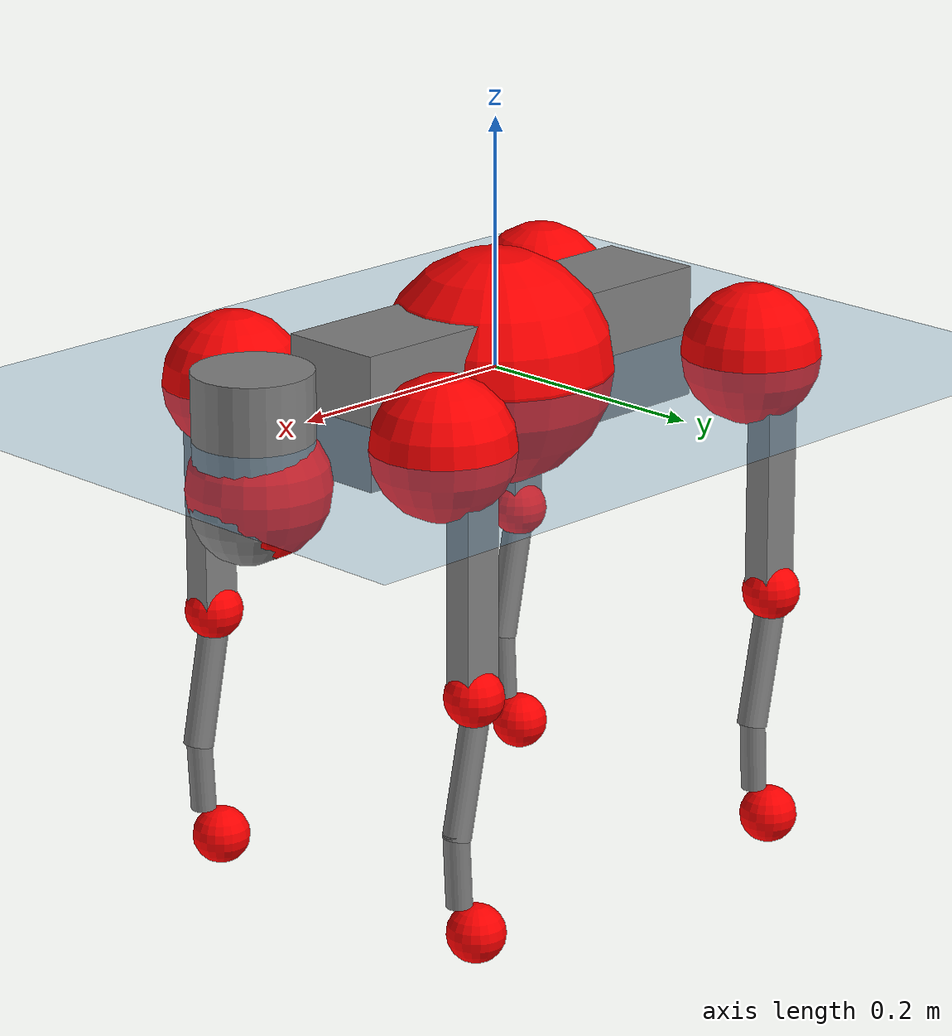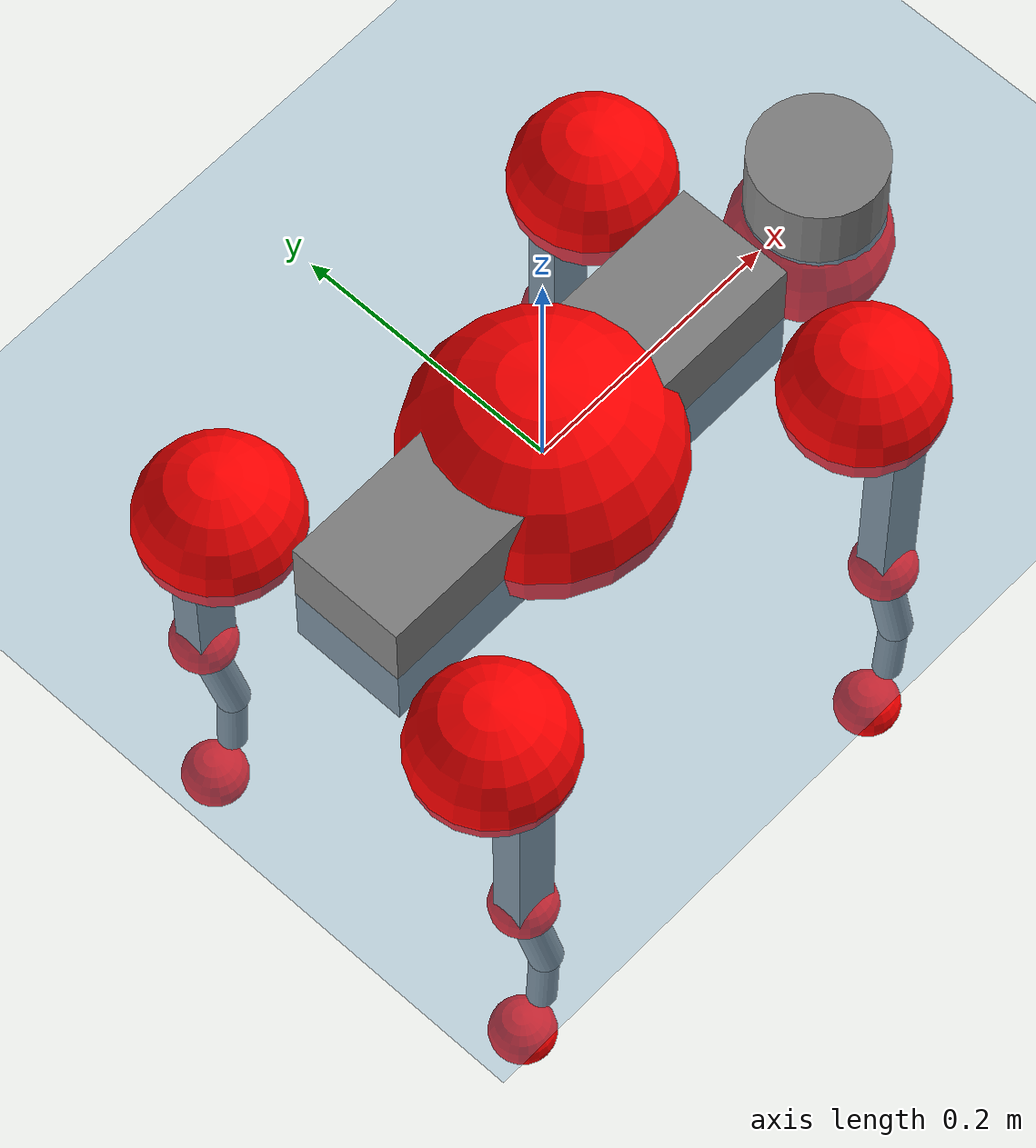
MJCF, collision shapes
<mujoco model="go2">
  <compiler angle="radian" assetdir="assets" balanceinertia="true" inertiafromgeom="false"/>

  <option timestep="0.005" density="1.2" viscosity="2e-05"/>

  <size nkey="1"/>

  <visual>
    <quality shadowsize="8192"/>
    <map shadowclip="0.5"/>
  </visual>

  <default>
    <default class="/">
      <geom contype="0" conaffinity="0" group="1" solref="-1000 -80"/>
      <site size="0.01 0.005 0.005" group="5"/>
      <general forcelimited="true" biastype="affine" gainprm="20" biasprm="0 -20 -0.5"/>
      <default class="go2">
        <joint armature="0.01" damping="0.01" frictionloss="0.2"/>
        <geom condim="1" margin="0.001"/>
        <default class="visual">
          <geom type="mesh" group="2"/>
        </default>
        <default class="collision">
          <geom group="3"/>
          <default class="foot">
            <geom size="0.022 0 0" condim="6" priority="1" friction="0.8 0.02 0.01" solimp="0.015 1 0.022"/>
          </default>
        </default>
        <default class="reward_collision_sphere">
          <geom group="5" rgba="1 0 0 1"/>
        </default>
      </default>
    </default>
  </default>

  <asset>
    <texture type="skybox" colorspace="auto" name="//unnamed_texture_0" builtin="gradient" rgb1="0.95 0.95 0.95" rgb2="0.95 0.95 0.95" width="100" height="600"/>
    <texture type="2d" colorspace="auto" name="texplane" builtin="checker" rgb1="0.345 0.575 0.748" rgb2="0.345 0.575 0.748" markrgb="1 1 1" width="512" height="512"/>
    <material name="MatPlane" class="/" texture="texplane" texuniform="true" texrepeat="2 2" specular="0.9"/>
    <material name="metal" class="/" rgba="0.9 0.95 0.95 1"/>
    <material name="black" class="/" rgba="0 0 0 1"/>
    <material name="white" class="/"/>
    <material name="gray" class="/" rgba="0.671705 0.692426 0.77427 1"/>
    <mesh name="base_0" class="/" file="base_0.obj"/>
    <mesh name="base_1" class="/" file="base_1.obj"/>
    <mesh name="base_2" class="/" file="base_2.obj"/>
    <mesh name="base_3" class="/" file="base_3.obj"/>
    <mesh name="base_4" class="/" file="base_4.obj"/>
    <mesh name="hip_0" class="/" file="hip_0.obj"/>
    <mesh name="hip_1" class="/" file="hip_1.obj"/>
    <mesh name="thigh_0" class="/" file="thigh_0.obj"/>
    <mesh name="thigh_1" class="/" file="thigh_1.obj"/>
    <mesh name="thigh_mirror_0" class="/" file="thigh_mirror_0.obj"/>
    <mesh name="thigh_mirror_1" class="/" file="thigh_mirror_1.obj"/>
    <mesh name="calf_0" class="/" file="calf_0.obj"/>
    <mesh name="calf_1" class="/" file="calf_1.obj"/>
    <mesh name="calf_mirror_0" class="/" file="calf_mirror_0.obj"/>
    <mesh name="calf_mirror_1" class="/" file="calf_mirror_1.obj"/>
    <mesh name="foot" class="/" file="foot.obj"/>
  </asset>

  <worldbody>
    <geom name="floor" class="/" size="100 100 0.125" type="plane" group="0" material="MatPlane"/>
    <light name="toplight_shadow" class="/" pos="0 0 5" dir="0.0990148 0.0990148 -0.990148" type="directional" ambient="0.04 0.04 0.04" diffuse="0.55 0.55 0.55" specular="0.12 0.12 0.12"/>
    <light name="toplight_fill" class="/" pos="0 0 5" dir="0.0990148 0.0990148 -0.990148" type="directional" castshadow="false" ambient="0.04 0.04 0.04" diffuse="0.3 0.3 0.3" specular="0.08 0.08 0.08"/>
    <body name="trunk" childclass="go2" pos="-0.000299403 -0.000103245 0.00126836" quat="0.999999 0.000802137 -0.000316295 -0.000541714">
      <inertial pos="0.0175166 -0.00270495 -0.00676423" quat="-0.000641369 0.71305 -0.00200623 0.70111" mass="5.75281" diaginertia="0.0601844 0.100527 0.0148918"/>
      <joint name="//unnamed_joint_0" type="free" armature="0" damping="0" frictionloss="0"/>
      <geom name="//unnamed_geom_1" class="visual" material="black" mesh="base_0"/>
      <geom name="//unnamed_geom_2" class="visual" material="black" mesh="base_1"/>
      <geom name="//unnamed_geom_3" class="visual" material="black" mesh="base_2"/>
      <geom name="//unnamed_geom_4" class="visual" material="white" mesh="base_3"/>
      <geom name="//unnamed_geom_5" class="visual" material="gray" mesh="base_4"/>
      <geom name="trunk_1" class="collision" size="0.176134 0.0437759 0.0533738" type="box"/>
      <geom name="trunk_2" class="collision" size="0.0468191 0.0421372" pos="0.25442 0 0.00908585" type="cylinder"/>
      <geom name="trunk_3" class="collision" size="0.04401" pos="0.261562 0 -0.0545151"/>
      <geom name="//unnamed_geom_9" class="reward_collision_sphere" size="0.0936383"/>
      <geom name="//unnamed_geom_10" class="reward_collision_sphere" size="0.056183" pos="0.249956 0 -0.0408863"/>
      <site name="imu" pos="-0.0123793 -0.00107915 0.0278926" size="0.00936383"/>
      <camera name="track" pos="0 -2.01572 0" quat="0.707107 0.707107 0 0" mode="trackcom"/>
      <camera name="ego_camera" pos="0.278523 0 0.0408863" quat="-0.5 -0.5 0.5 0.5"/>
      <body name="FL_hip" pos="0.169228 0.0440498 -0.00276839" quat="1 0.000250776 0.000306864 0.000103701">
        <inertial pos="-0.00466846 -0.000631772 0.000576429" quat="0.49679 0.50018 0.505683 0.497296" mass="0.565045" diaginertia="0.000496601 0.000590182 0.000291839"/>
        <joint name="FL_hip_joint" pos="0 0 0" axis="0.999894 -0.0140658 -0.00384572" range="-1.0502 1.08443" armature="0.00920733" damping="0.0196034" frictionloss="0.16102"/>
        <geom name="//unnamed_geom_11" class="visual" material="metal" mesh="hip_0"/>
        <geom name="//unnamed_geom_12" class="visual" material="gray" mesh="hip_1"/>
        <geom name="//unnamed_geom_13" class="collision" size="0.0430736 0.0187277" pos="0 0.0806289 0" quat="0.707107 0.707107 0 0" type="cylinder"/>
        <geom name="//unnamed_geom_14" class="reward_collision_sphere" size="0.056183" pos="0 0.0705503 0"/>
        <body name="FL_thigh" pos="-0.00333422 0.097533 0.0027951" quat="0.999999 -0.000400669 -0.00041799 -0.000933591">
          <inertial pos="-0.00410793 -0.0225571 -0.0271448" quat="0.825276 0.0743308 -0.0181241 0.559522" mass="0.923922" diaginertia="0.00342796 0.00603588 0.000556582"/>
          <joint name="FL_thigh_joint" pos="0 0 0" axis="0.00472145 0.999984 0.00322488" stiffness="0.00885937" range="-1.52057 3.54715" armature="0.00922298" damping="0.017931" frictionloss="0.162891"/>
          <geom name="//unnamed_geom_15" class="visual" material="metal" mesh="thigh_0"/>
          <geom name="//unnamed_geom_16" class="visual" material="gray" mesh="thigh_1"/>
          <geom name="//unnamed_geom_17" class="collision" size="0.0997248 0.0114707 0.0159185" pos="0 0 -0.0967644" quat="0.707107 0 0.707107 0" type="box"/>
          <body name="FL_calf" pos="0.000246634 0.00175763 -0.193641" quat="1 1.0262e-05 5.42378e-06 0.000122714">
            <inertial pos="0.00516839 -0.000719601 -0.130463" quat="0.70984 0.00231366 -0.00478489 0.704343" mass="0.200931" diaginertia="0.000823334 0.00151385 3.30479e-05"/>
            <joint name="FL_calf_joint" pos="0 0 0" axis="-0.011737 0.999853 0.0124817" range="-2.66727 -0.829358" armature="0.00985724" damping="0.00129899" frictionloss="0.191484"/>
            <geom name="//unnamed_geom_18" class="visual" material="gray" mesh="calf_0"/>
            <geom name="//unnamed_geom_19" class="visual" material="black" mesh="calf_1"/>
            <geom name="FL_calf0" class="collision" size="0.0112366 0.056183" pos="0.00714161 0 -0.0545151" quat="0.994493 0 -0.104807 0" type="cylinder"/>
            <geom name="//unnamed_geom_21" class="collision" size="0.0103002 0.0304324" pos="0.017854 0 -0.134471" quat="0.999688 0 0.0249974 0" type="cylinder"/>
            <geom name="//unnamed_geom_22" class="visual" pos="0 0 -0.193529" quat="1 0 0 0" material="black" mesh="foot"/>
            <geom name="FL_foot" class="foot" size="0.0156979" pos="-0.0017854 0 -0.193529"/>
            <geom name="//unnamed_geom_24" class="reward_collision_sphere" size="0.0234096"/>
            <geom name="//unnamed_geom_25" class="reward_collision_sphere" size="0.0234096" pos="-0.0017854 0 -0.193529"/>
            <site name="FL_foot" class="foot" pos="-0.0017854 0 -0.193529" size="0.00936383"/>
          </body>
        </body>
      </body>
      <body name="FR_hip" pos="0.170897 -0.0451875 -0.000992652" quat="1 -0.000115121 1.80782e-05 -6.8548e-05">
        <inertial pos="-0.00737143 -0.00280133 -0.00323299" quat="0.503472 0.507283 0.493935 0.495185" mass="0.55814" diaginertia="0.000479582 0.000630684 0.000284127"/>
        <joint name="FR_hip_joint" pos="0 0 0" axis="0.999908 0.0135732 -2.97055e-05" stiffness="0.00507371" range="-1.06331 1.03614" armature="0.00966632" damping="0" frictionloss="0.201056"/>
        <geom name="//unnamed_geom_26" class="visual" pos="0 8.64846e-10 3.7095e-08" quat="4.63268e-05 1 0 0" material="metal" mesh="hip_0"/>
        <geom name="//unnamed_geom_27" class="visual" pos="0 1.40202e-09 -9.17502e-08" quat="4.63268e-05 1 0 0" material="gray" mesh="hip_1"/>
        <geom name="//unnamed_geom_28" class="collision" size="0.0430736 0.0187277" pos="0 -0.0806289 0" quat="0.707107 0.707107 0 0" type="cylinder"/>
        <geom name="//unnamed_geom_29" class="reward_collision_sphere" size="0.056183" pos="0 -0.0705503 0"/>
        <body name="FR_thigh" pos="0.00278098 -0.0989106 -0.00181449" quat="0.999999 0.000594958 0.000526272 -0.000888754">
          <inertial pos="-0.00149275 0.0217086 -0.0322743" quat="0.554256 -0.0276839 0.0949536 0.826449" mass="0.9846" diaginertia="0.00327665 0.0059105 0.000561634"/>
          <joint name="FR_thigh_joint" pos="0 0 0" axis="-0.00041111 -1 -0.000232434" range="-3.46675 1.57489" armature="0.00817868" damping="0.0185432" frictionloss="0.204884"/>
          <geom name="//unnamed_geom_30" class="visual" material="metal" mesh="thigh_mirror_0"/>
          <geom name="//unnamed_geom_31" class="visual" material="gray" mesh="thigh_mirror_1"/>
          <geom name="//unnamed_geom_32" class="collision" size="0.0997248 0.0114707 0.0159185" pos="0 0 -0.0967644" quat="0.707107 0 0.707107 0" type="box"/>
          <body name="FR_calf" pos="-0.00268648 -0.00136645 -0.194472" quat="0.999999 -0.000363207 0.00122242 0.00042712">
            <inertial pos="0.00275303 0.000770085 -0.129071" quat="0.708148 -0.00961016 0.00150669 0.705997" mass="0.211827" diaginertia="0.000893648 0.00153346 3.42049e-05"/>
            <joint name="FR_calf_joint" pos="0 0 0" axis="0.00943846 -0.999955 -0.000549857" range="0.7979 2.667" armature="0.0107825" damping="0.0173747" frictionloss="0.206649"/>
            <geom name="//unnamed_geom_33" class="visual" material="gray" mesh="calf_mirror_0"/>
            <geom name="//unnamed_geom_34" class="visual" material="black" mesh="calf_mirror_1"/>
            <geom name="FR_calf0" class="collision" size="0.012173 0.056183" pos="0.00892702 0 -0.0545151" quat="0.995004 0 -0.0998334 0" type="cylinder"/>
            <geom name="//unnamed_geom_36" class="collision" size="0.0103002 0.0304324" pos="0.017854 0 -0.134471" quat="0.999688 0 0.0249974 0" type="cylinder"/>
            <geom name="//unnamed_geom_37" class="visual" pos="0 0 -0.193529" quat="1 0 0 0" material="black" mesh="foot"/>
            <geom name="FR_foot" class="foot" size="0.0200347" pos="-0.0017854 0 -0.193529"/>
            <geom name="//unnamed_geom_39" class="reward_collision_sphere" size="0.0234096"/>
            <geom name="//unnamed_geom_40" class="reward_collision_sphere" size="0.0234096" pos="-0.0017854 0 -0.193529"/>
            <site name="FR_foot" class="foot" pos="-0.0017854 0 -0.193529" size="0.00936383"/>
          </body>
        </body>
      </body>
      <body name="RL_hip" pos="-0.170135 0.0444962 -0.00238046" quat="1 -0.000145745 4.79006e-05 0.000202073">
        <inertial pos="0.00502106 0.00513904 -0.000461957" quat="0.501003 0.509375 0.490402 0.499038" mass="0.568677" diaginertia="0.000519656 0.000635898 0.000294851"/>
        <joint name="RL_hip_joint" pos="0 0 0" axis="-0.999996 0.00266448 0.000138821" range="-1.0584 1.06685" armature="0.00998986" damping="0.000878587" frictionloss="0.185221"/>
        <geom name="//unnamed_geom_41" class="visual" pos="1.38374e-10 0 2.71244e-08" quat="4.63268e-05 0 1 0" material="metal" mesh="hip_0"/>
        <geom name="//unnamed_geom_42" class="visual" pos="2.2432e-10 0 2.40555e-08" quat="4.63268e-05 0 1 0" material="gray" mesh="hip_1"/>
        <geom name="//unnamed_geom_43" class="collision" size="0.0430736 0.0187277" pos="0 0.0806289 0" quat="0.707107 0.707107 0 0" type="cylinder"/>
        <geom name="//unnamed_geom_44" class="reward_collision_sphere" size="0.056183" pos="0 0.0705503 0"/>
        <body name="RL_thigh" pos="0.000366866 0.09445 0.00160493" quat="1 0.000650706 -0.00034632 -0.000247056">
          <inertial pos="-0.00443504 -0.020869 -0.0315676" quat="0.828973 0.0859774 -0.0222252 0.552193" mass="0.892188" diaginertia="0.00319449 0.0060669 0.000534496"/>
          <joint name="RL_thigh_joint" pos="0 0 0" axis="-0.00242539 0.999995 -0.00205901" stiffness="0.00984038" range="-0.568509 4.48196" armature="0.00918926" damping="0" frictionloss="0.190349"/>
          <geom name="//unnamed_geom_45" class="visual" material="metal" mesh="thigh_0"/>
          <geom name="//unnamed_geom_46" class="visual" material="gray" mesh="thigh_1"/>
          <geom name="//unnamed_geom_47" class="collision" size="0.0997248 0.0114707 0.0159185" pos="0 0 -0.0967644" quat="0.707107 0 0.707107 0" type="box"/>
          <body name="RL_calf" pos="-0.00175552 0.00111534 -0.195091" quat="1 -7.37348e-05 6.89984e-05 -8.58882e-06">
            <inertial pos="0.00787718 0.00181262 -0.129617" quat="0.708389 0.0132045 0.00214155 0.705696" mass="0.201561" diaginertia="0.000825934 0.0015908 3.37008e-05"/>
            <joint name="RL_calf_joint" pos="0 0 0" axis="0.000498194 0.999997 -0.00218815" stiffness="0.00988643" range="-2.6721 -0.892449" armature="0.0103662" damping="0.0167506" frictionloss="0.162507"/>
            <geom name="//unnamed_geom_48" class="visual" material="gray" mesh="calf_0"/>
            <geom name="//unnamed_geom_49" class="visual" material="black" mesh="calf_1"/>
            <geom name="RL_calf0" class="collision" size="0.012173 0.056183" pos="0.00892702 0 -0.0545151" quat="0.995004 0 -0.0998334 0" type="cylinder"/>
            <geom name="//unnamed_geom_51" class="collision" size="0.0103002 0.0304324" pos="0.017854 0 -0.134471" quat="0.999688 0 0.0249974 0" type="cylinder"/>
            <geom name="//unnamed_geom_52" class="visual" pos="0 0 -0.193529" quat="1 0 0 0" material="black" mesh="foot"/>
            <geom name="RL_foot" class="foot" size="0.018867" pos="-0.0017854 0 -0.193529"/>
            <geom name="//unnamed_geom_54" class="reward_collision_sphere" size="0.0234096"/>
            <geom name="//unnamed_geom_55" class="reward_collision_sphere" size="0.0234096" pos="-0.0017854 0 -0.193529"/>
            <site name="RL_foot" class="foot" pos="-0.0017854 0 -0.193529" size="0.00936383"/>
          </body>
        </body>
      </body>
      <body name="RR_hip" pos="-0.171474 -0.0481997 0.00259881" quat="1 -0.000149511 -0.000329156 2.36052e-05">
        <inertial pos="0.00212947 0.000653417 -0.00207039" quat="0.499439 0.498441 0.500609 0.501506" mass="0.565488" diaginertia="0.000491389 0.00061273 0.000293386"/>
        <joint name="RR_hip_joint" pos="0 0 0" axis="-0.99994 0.00166158 -0.01086" range="-1.09416 1.09506" armature="0.00854141" damping="0" frictionloss="0.188689"/>
        <geom name="//unnamed_geom_56" class="visual" pos="-1.34387e-10 8.64846e-10 -9.9706e-09" quat="2.14617e-09 4.63268e-05 4.63268e-05 -1" material="metal" mesh="hip_0"/>
        <geom name="//unnamed_geom_57" class="visual" pos="-2.34182e-10 1.40202e-09 1.15806e-07" quat="2.14617e-09 4.63268e-05 4.63268e-05 -1" material="gray" mesh="hip_1"/>
        <geom name="//unnamed_geom_58" class="collision" size="0.0430736 0.0187277" pos="0 -0.0806289 0" quat="0.707107 0.707107 0 0" type="cylinder"/>
        <geom name="//unnamed_geom_59" class="reward_collision_sphere" size="0.056183" pos="0 -0.0705503 0"/>
        <body name="RR_thigh" pos="0.00173298 -0.0947814 -0.00117037" quat="0.999999 -0.000447416 0.00102018 0.000160505">
          <inertial pos="-0.00292787 0.0251869 -0.0296117" quat="0.55193 -0.0193865 0.0851106 0.829309" mass="0.881041" diaginertia="0.00314238 0.00593823 0.000531873"/>
          <joint name="RR_thigh_joint" pos="0 0 0" axis="-0.00174638 -0.99999 -0.00408021" stiffness="0.000135347" range="-4.48407 0.508318" armature="0.00965253" damping="0.0224928" frictionloss="0.183573"/>
          <geom name="//unnamed_geom_60" class="visual" material="metal" mesh="thigh_mirror_0"/>
          <geom name="//unnamed_geom_61" class="visual" material="gray" mesh="thigh_mirror_1"/>
          <geom name="//unnamed_geom_62" class="collision" size="0.0997248 0.0114707 0.0159185" pos="0 0 -0.0967644" quat="0.707107 0 0.707107 0" type="box"/>
          <body name="RR_calf" pos="0.00160584 0.00181762 -0.194067" quat="1 -0.00084045 -0.000372451 0.000336538">
            <inertial pos="0.00815116 -0.00134741 -0.128278" quat="0.695603 0.00256051 0.00636699 0.718394" mass="0.199323" diaginertia="0.000819489 0.00152197 3.19074e-05"/>
            <joint name="RR_calf_joint" pos="0 0 0" axis="-0.011399 -0.999932 0.00230928" range="0.837537 2.77003" armature="0.00913864" damping="0.017591" frictionloss="0.205915"/>
            <geom name="//unnamed_geom_63" class="visual" material="gray" mesh="calf_mirror_0"/>
            <geom name="//unnamed_geom_64" class="visual" material="black" mesh="calf_mirror_1"/>
            <geom name="RR_calf0" class="collision" size="0.012173 0.056183" pos="0.00892702 0 -0.0545151" quat="0.995004 0 -0.0998334 0" type="cylinder"/>
            <geom name="//unnamed_geom_66" class="collision" size="0.0103002 0.0304324" pos="0.017854 0 -0.134471" quat="0.999688 0 0.0249974 0" type="cylinder"/>
            <geom name="//unnamed_geom_67" class="visual" pos="0 0 -0.193529" quat="1 0 0 0" material="black" mesh="foot"/>
            <geom name="RR_foot" class="foot" size="0.0188773" pos="-0.0017854 0 -0.193529"/>
            <geom name="//unnamed_geom_69" class="reward_collision_sphere" size="0.0234096"/>
            <geom name="//unnamed_geom_70" class="reward_collision_sphere" size="0.0234096" pos="-0.0017854 0 -0.193529"/>
            <site name="RR_foot" class="foot" pos="-0.0017854 0 -0.193529" size="0.00936383"/>
          </body>
        </body>
      </body>
    </body>
  </worldbody>

  <contact>
    <pair class="/" geom1="floor" geom2="FL_foot" name="//unnamed_contact_0"/>
    <pair class="/" geom1="floor" geom2="FR_foot" name="//unnamed_contact_1"/>
    <pair class="/" geom1="floor" geom2="RL_foot" name="//unnamed_contact_2"/>
    <pair class="/" geom1="floor" geom2="RR_foot" name="//unnamed_contact_3"/>
  </contact>

  <actuator>
    <general name="FL_hip" class="/" joint="FL_hip_joint" forcerange="-19.8321 19.8321" gainprm="17.6209" biasprm="0 -17.6209 -0.438393"/>
    <general name="FL_thigh" class="/" joint="FL_thigh_joint" forcerange="-20.6499 20.6499" gainprm="17.6209" biasprm="0 -17.6209 -0.438393"/>
    <general name="FL_calf" class="/" joint="FL_calf_joint" forcerange="-40.3377 40.3377" gainprm="17.6209" biasprm="0 -17.6209 -0.438393"/>
    <general name="FR_hip" class="/" joint="FR_hip_joint" forcerange="-22.179 22.179" gainprm="17.6209" biasprm="0 -17.6209 -0.438393"/>
    <general name="FR_thigh" class="/" joint="FR_thigh_joint" forcerange="-24.5215 24.5215" gainprm="17.6209" biasprm="0 -17.6209 -0.438393"/>
    <general name="FR_calf" class="/" joint="FR_calf_joint" forcerange="-43.0225 43.0225" gainprm="17.6209" biasprm="0 -17.6209 -0.438393"/>
    <general name="RL_hip" class="/" joint="RL_hip_joint" forcerange="-21.831 21.831" gainprm="17.6209" biasprm="0 -17.6209 -0.438393"/>
    <general name="RL_thigh" class="/" joint="RL_thigh_joint" forcerange="-19.8784 19.8784" gainprm="17.6209" biasprm="0 -17.6209 -0.438393"/>
    <general name="RL_calf" class="/" joint="RL_calf_joint" forcerange="-44.8659 44.8659" gainprm="17.6209" biasprm="0 -17.6209 -0.438393"/>
    <general name="RR_hip" class="/" joint="RR_hip_joint" forcerange="-22.9761 22.9761" gainprm="17.6209" biasprm="0 -17.6209 -0.438393"/>
    <general name="RR_thigh" class="/" joint="RR_thigh_joint" forcerange="-24.2893 24.2893" gainprm="17.6209" biasprm="0 -17.6209 -0.438393"/>
    <general name="RR_calf" class="/" joint="RR_calf_joint" forcerange="-43.0245 43.0245" gainprm="17.6209" biasprm="0 -17.6209 -0.438393"/>
  </actuator>

  <sensor>
    <gyro site="imu" name="imu_angular_velocity"/>
    <velocimeter site="imu" name="imu_linear_velocity"/>
    <framelinvel objtype="site" objname="FL_foot" name="FL_foot_global_linear_velocity"/>
    <framelinvel objtype="site" objname="FR_foot" name="FR_foot_global_linear_velocity"/>
    <framelinvel objtype="site" objname="RL_foot" name="RL_foot_global_linear_velocity"/>
    <framelinvel objtype="site" objname="RR_foot" name="RR_foot_global_linear_velocity"/>
  </sensor>

  <keyframe>
    <key name="home" qpos="0 0 0.325 1 0 0 0 0.1 0.8 -1.5 -0.1 -0.8 1.5 -0.1 0.8 -1.5 0.1 -0.8 1.5"/>
  </keyframe>
</mujoco>
